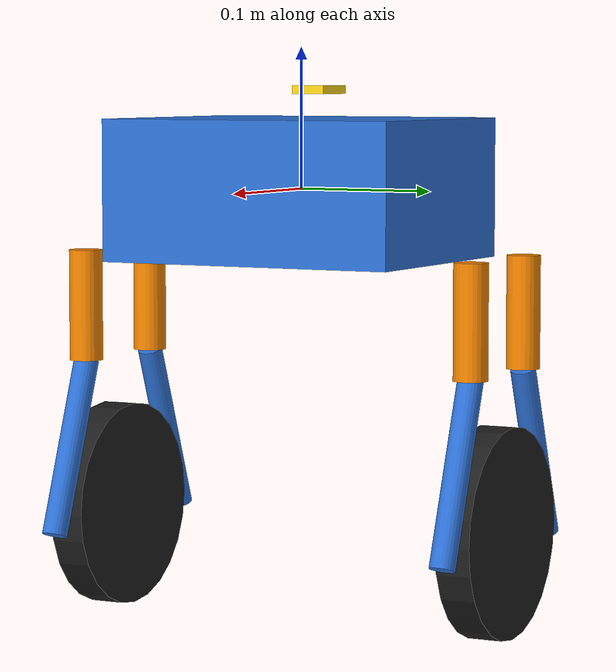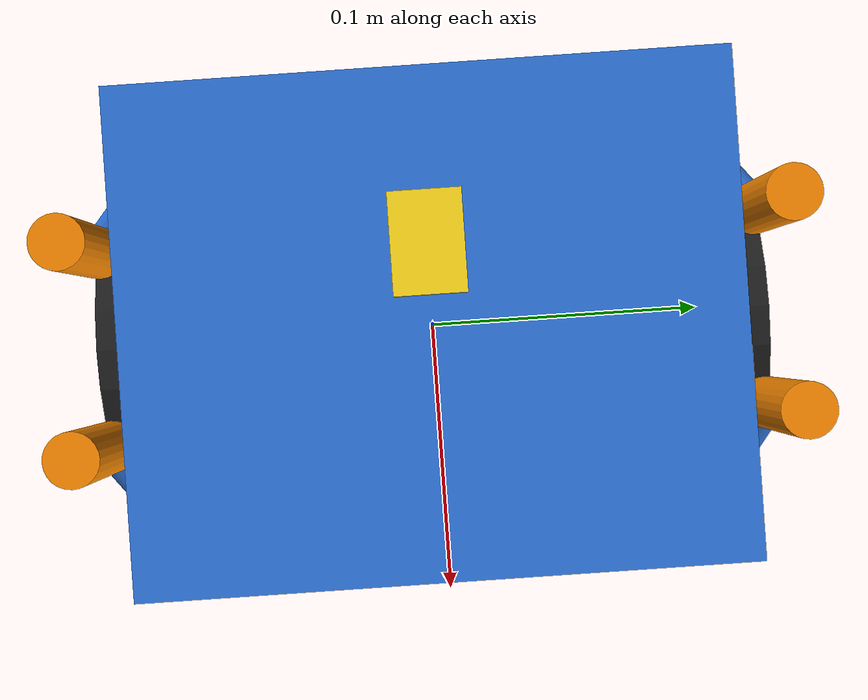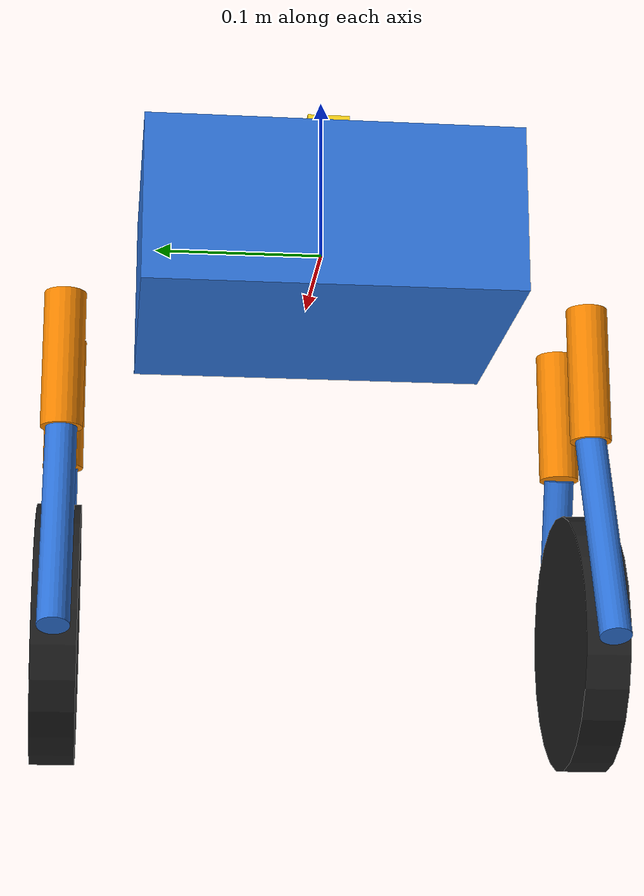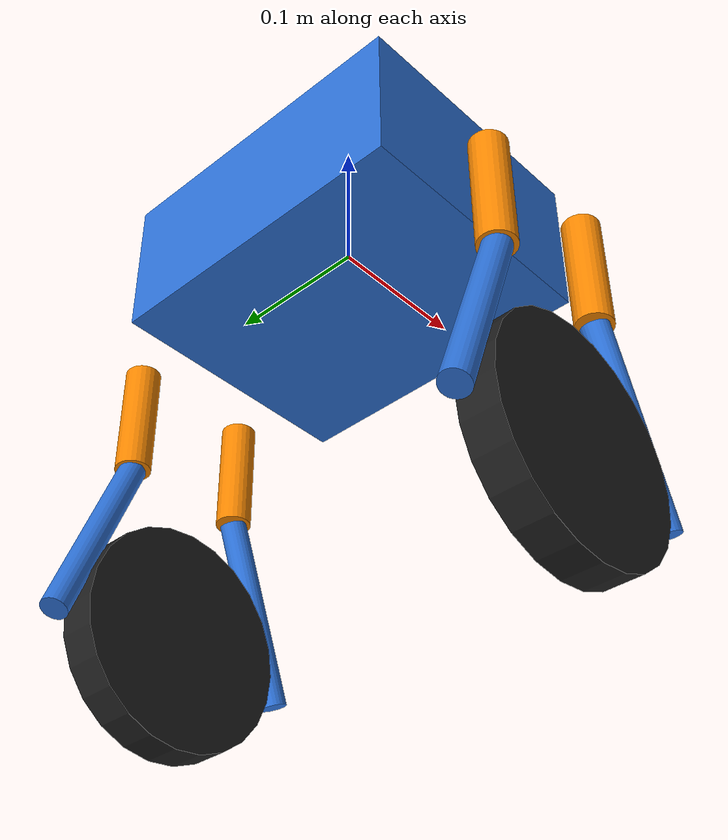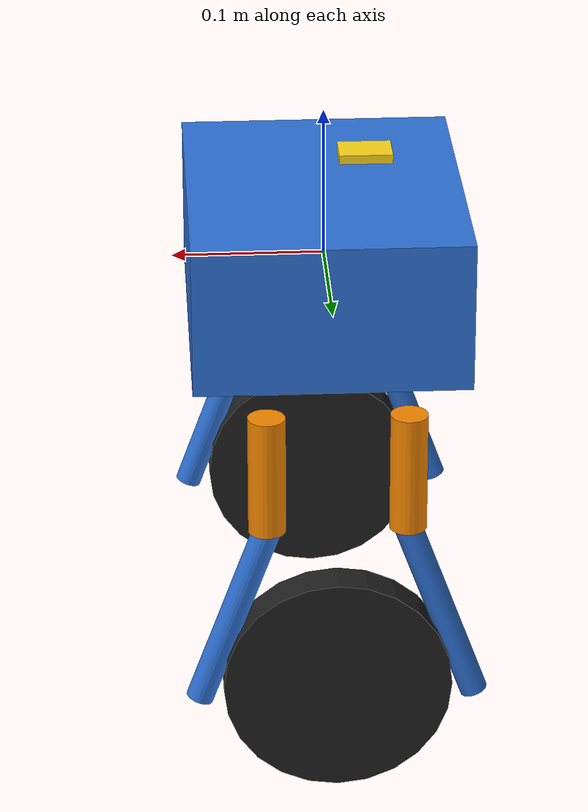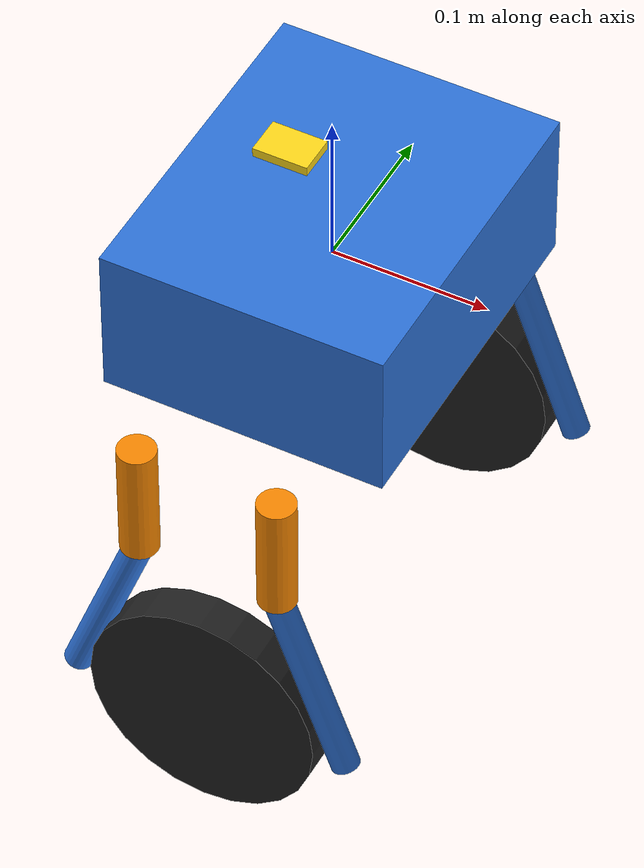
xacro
<?xml version="1.0"?>
<robot xmlns:xacro="http://www.ros.org/wiki/xacro" name="sandro">
  <xacro:arg name="control_backend" default="none"/>
  <xacro:arg name="can_interface" default="can0"/>
  <xacro:arg name="imu_transport" default="spi"/>
  <xacro:arg name="imu_spi_device" default="/dev/spidev6.0"/>
  <xacro:arg name="imu_port" default="/dev/ttyUSB0"/>
  <!-- BNO085 chip x from body x about z; 0 for the pre-2026-11 roof mount. -->
  <xacro:arg name="imu_mount_yaw_rad" default="1.5707963267948966"/>
  <xacro:arg name="state_source" default="mit"/>
  <xacro:arg name="encoder_period_ms" default="20"/>
  <xacro:arg name="simulation_headless" default="false"/>
  <xacro:arg name="simulation_latency" default="true"/>
  <xacro:arg name="sim_imu_delay_s" default="0.010"/>
  <xacro:arg name="sim_imu_rate_hz" default="200"/>
  <xacro:arg name="sim_joint_delay_s" default="0.001"/>
  <xacro:arg name="sim_joint_rate_hz" default="200"/>
  <xacro:arg name="sim_joint_stagger" default="true"/>
  <xacro:arg name="sim_command_delay_s" default="0.001"/>
  <xacro:property name="control_backend" value="$(arg control_backend)"/>

  <material name="body_blue"><color rgba="0.18 0.45 0.85 1"/></material>
  <material name="link_orange"><color rgba="0.97 0.53 0.00 1"/></material>
  <material name="wheel_dark"><color rgba="0.12 0.12 0.12 1"/></material>
  <material name="imu_yellow"><color rgba="1.0 0.85 0.1 1"/></material>

  <link name="base_link">
    <visual>
      <origin xyz="0 0 0"/>
      <geometry><box size="0.18 0.22 0.10"/></geometry>
      <material name="body_blue"/>
    </visual>
  </link>

  <link name="imu_link">
    <visual>
      <geometry><box size="0.035 0.025 0.006"/></geometry>
      <material name="imu_yellow"/>
    </visual>
  </link>
  <joint name="imu_mount" type="fixed">
    <parent link="base_link"/>
    <child link="imu_link"/>
    <!-- 2026-11 holder: centred, 27 mm behind and 17 mm above the earlier
         roof mount (mjcf imu site); x forward/y left/z up. -->
    <origin xyz="-0.027 0 0.070"/>
  </joint>

  <xacro:macro name="five_bar_visual" params="side y dir">
    <!-- Joint spacing and bar lengths come from SandroControl/config.yaml. -->
    <link name="${side}_inner_link">
      <visual>
        <origin xyz="0 0 -0.04"/>
        <geometry><cylinder radius="0.012" length="0.08"/></geometry>
        <material name="link_orange"/>
      </visual>
    </link>
    <joint name="${side}_motor_inner" type="revolute">
      <parent link="base_link"/>
      <child link="${side}_inner_link"/>
      <origin xyz="${-0.045 * dir} ${y} -0.045"/>
      <axis xyz="0 ${dir} 0"/>
      <limit lower="-2.0943951024" upper="2.0943951024"
             effort="10.0" velocity="60.0"/>
    </joint>

    <link name="${side}_inner_lower_visual">
      <visual>
        <origin xyz="0 0 -0.065"/>
        <geometry><cylinder radius="0.009" length="0.13"/></geometry>
        <material name="body_blue"/>
      </visual>
    </link>
    <joint name="${side}_inner_lower_visual_joint" type="fixed">
      <parent link="${side}_inner_link"/>
      <child link="${side}_inner_lower_visual"/>
      <origin xyz="0 0 -0.08" rpy="0 ${0.35 * dir} 0"/>
    </joint>

    <link name="${side}_outer_link">
      <visual>
        <origin xyz="0 0 -0.04"/>
        <geometry><cylinder radius="0.012" length="0.08"/></geometry>
        <material name="link_orange"/>
      </visual>
    </link>
    <joint name="${side}_motor_outer" type="revolute">
      <parent link="base_link"/>
      <child link="${side}_outer_link"/>
      <origin xyz="${0.045 * dir} ${y} -0.045"/>
      <axis xyz="0 ${-dir} 0"/>
      <limit lower="-2.0943951024" upper="2.0943951024"
             effort="10.0" velocity="60.0"/>
    </joint>

    <link name="${side}_outer_lower_visual">
      <visual>
        <origin xyz="0 0 -0.065"/>
        <geometry><cylinder radius="0.009" length="0.13"/></geometry>
        <material name="body_blue"/>
      </visual>
    </link>
    <joint name="${side}_outer_lower_visual_joint" type="fixed">
      <parent link="${side}_outer_link"/>
      <child link="${side}_outer_lower_visual"/>
      <origin xyz="0 0 -0.08" rpy="0 ${-0.35 * dir} 0"/>
    </joint>

    <link name="${side}_wheel_link">
      <visual>
        <origin rpy="1.5707963267948966 0 0"/>
        <geometry><cylinder radius="0.0742" length="0.025"/></geometry>
        <material name="wheel_dark"/>
      </visual>
    </link>
    <joint name="${side}_wheel" type="continuous">
      <parent link="base_link"/>
      <child link="${side}_wheel_link"/>
      <origin xyz="0 ${y} -0.235"/>
      <axis xyz="0 1 0"/>
      <limit effort="10.0" velocity="60.0"/>
    </joint>
  </xacro:macro>

  <xacro:five_bar_visual side="right" y="-0.152" dir="1"/>
  <xacro:five_bar_visual side="left" y="0.152" dir="-1"/>

  <xacro:include filename="$(find sandro_description)/urdf/sandro.ros2_control.xacro"/>
  <xacro:if value="${control_backend != 'none'}">
    <xacro:sandro_ros2_control backend="${control_backend}"
      can_interface="$(arg can_interface)" imu_transport="$(arg imu_transport)"
      imu_spi_device="$(arg imu_spi_device)" imu_port="$(arg imu_port)"
      imu_mount_yaw_rad="$(arg imu_mount_yaw_rad)"
      state_source="$(arg state_source)" encoder_period_ms="$(arg encoder_period_ms)"
      simulation_headless="$(arg simulation_headless)"
      simulation_latency="$(arg simulation_latency)"
      sim_imu_delay_s="$(arg sim_imu_delay_s)" sim_imu_rate_hz="$(arg sim_imu_rate_hz)"
      sim_joint_delay_s="$(arg sim_joint_delay_s)" sim_joint_rate_hz="$(arg sim_joint_rate_hz)"
      sim_joint_stagger="$(arg sim_joint_stagger)"
      sim_command_delay_s="$(arg sim_command_delay_s)"/>
  </xacro:if>
</robot>
